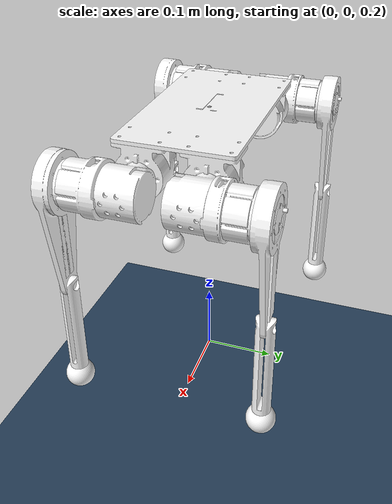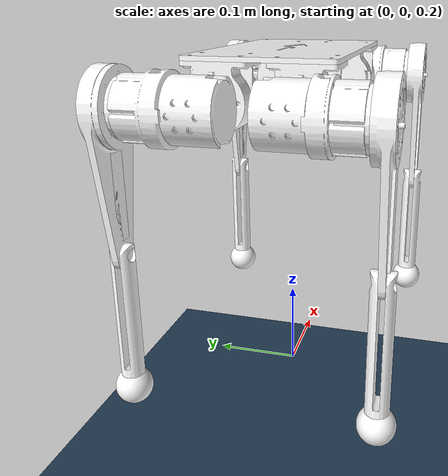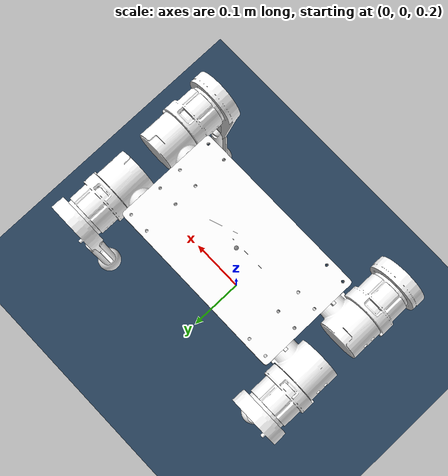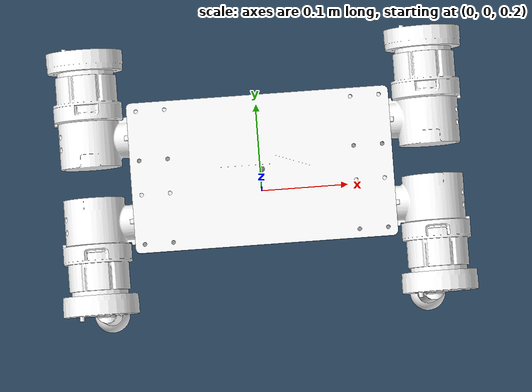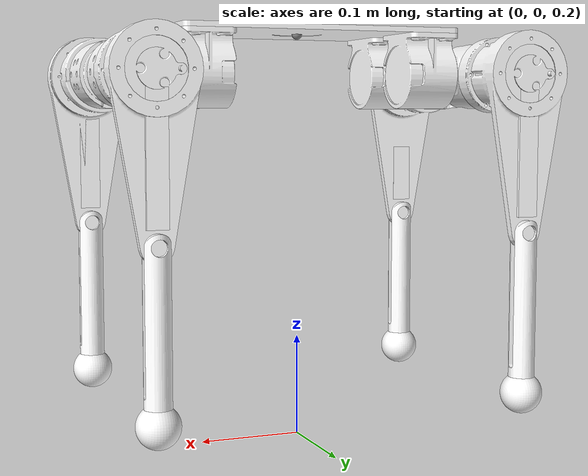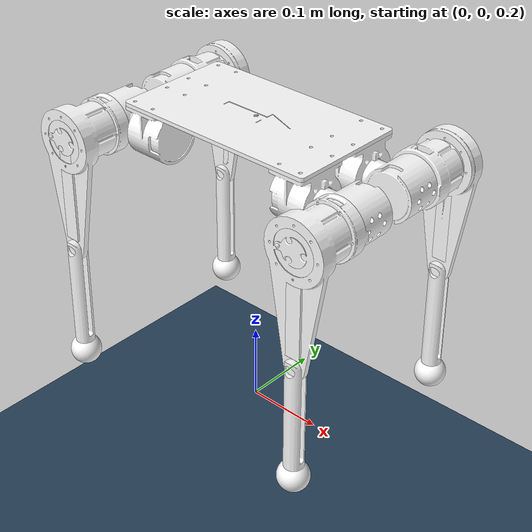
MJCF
<mujoco model="dog scene">
  <include file="dog_V1.xml" />

  <statistic center="0 0 0.1" extent="0.8"/>

  <visual>
    <headlight diffuse="0.6 0.6 0.6" ambient="0.3 0.3 0.3" specular="0 0 0"/>
    <rgba haze="0.15 0.25 0.35 1"/>
    <global azimuth="-130" elevation="-20"/>
  </visual>

  <asset>
    <texture type="skybox" builtin="gradient" rgb1="0.3 0.5 0.7" rgb2="0 0 0" width="512" height="3072"/>
    <texture type="2d" name="groundplane" builtin="checker" mark="edge" rgb1="0.2 0.3 0.4" rgb2="0.1 0.2 0.3"
      markrgb="0.8 0.8 0.8" width="300" height="300"/>
    <material name="groundplane" texture="groundplane" texuniform="true" texrepeat="5 5" reflectance="0.2"/>
  </asset>

  <worldbody>
    <light pos="0 0 1.5" dir="0 0 -1" directional="true"/>
    <geom name="floor" size="0 0 0.05" type="plane" material="groundplane"/>

  </worldbody>
</mujoco>

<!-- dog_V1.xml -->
<mujoco model="dog">
  <compiler angle="radian" meshdir="../meshes/"/>

  <asset>
    <mesh name="base_link" file="base_link.STL"/>
    <mesh name="Link_ZQ1" file="Link_ZQ1.STL"/>
    <mesh name="Link_ZQ2" file="Link_ZQ2.STL"/>
    <mesh name="Link_ZQ3" file="Link_ZQ3.STL"/>
    <mesh name="Link_ZQ4" file="Link_ZQ4.STL"/>
    <mesh name="Link_ZQ5" file="Link_ZQ5.STL"/>
    <mesh name="Link_ZH1" file="Link_ZH1.STL"/>
    <mesh name="Link_ZH2" file="Link_ZH2.STL"/>
    <mesh name="Link_ZH3" file="Link_ZH3.STL"/>
    <mesh name="Link_ZH4" file="Link_ZH4.STL"/>
    <mesh name="Link_ZH5" file="Link_ZH5.STL"/>
    <mesh name="Link_YH1" file="Link_YH1.STL"/>
    <mesh name="Link_YH2" file="Link_YH2.STL"/>
    <mesh name="Link_YH3" file="Link_YH3.STL"/>
    <mesh name="Link_YH4" file="Link_YH4.STL"/>
    <mesh name="Link_YH5" file="Link_YH5.STL"/>
    <mesh name="Link_YQ1" file="Link_YQ1.STL"/>
    <mesh name="Link_YQ2" file="Link_YQ2.STL"/>
    <mesh name="Link_YQ3" file="Link_YQ3.STL"/>
    <mesh name="Link_YQ4" file="Link_YQ4.STL"/>
    <mesh name="Link_YQ5" file="Link_YQ5.STL"/>
  </asset>

  <!-- d.qpos index ZQ ZH YH YQ-->
  <worldbody>
    <body name="base_link" pos="0 0 0.6">
      <geom type="mesh" contype="0" conaffinity="0" group="1" density="0" rgba="1 1 1 1" mesh="base_link"/>
      <geom type="mesh" rgba="1 1 1 1" mesh="base_link"/>
      <joint name="floating_base_joint" type="free" limited="false" actuatorfrclimited="false"/>
      <geom pos="0.113 0.044 0" type="mesh" contype="0" conaffinity="0" group="1" density="0" rgba="1 1 1 1" mesh="Link_ZQ1"/>
      <geom pos="0.113 0.044 0" type="mesh" rgba="1 1 1 1" mesh="Link_ZQ1"/>
      <geom pos="-0.113 0.044 0" type="mesh" contype="0" conaffinity="0" group="1" density="0" rgba="1 1 1 1" mesh="Link_ZH1"/>
      <geom pos="-0.113 0.044 0" type="mesh" rgba="1 1 1 1" mesh="Link_ZH1"/>
      <geom pos="-0.113 -0.044 0" quat="6.68662e-08 0 0 -1" type="mesh" contype="0" conaffinity="0" group="1" density="0" rgba="1 1 1 1" mesh="Link_YH1"/>
      <geom pos="-0.113 -0.044 0" quat="6.68662e-08 0 0 -1" type="mesh" rgba="1 1 1 1" mesh="Link_YH1"/>
      <geom pos="0.113 -0.044 0" type="mesh" contype="0" conaffinity="0" group="1" density="0" rgba="1 1 1 1" mesh="Link_YQ1"/>
      <geom pos="0.113 -0.044 0" type="mesh" rgba="1 1 1 1" mesh="Link_YQ1"/>
      <site name="imu" pos="-0.0 0 0." />
      <body name="Link_ZQ2" pos="0.113 0.044 -0.04">
        <inertial pos="0.0653815 -0.00367484 3.74856e-08" quat="0.500863 0.500854 0.499135 0.499145" mass="0.158887" diaginertia="9.05634e-05 7.88558e-05 6.94079e-05"/>
        <joint name="joint_ZQ2" pos="0 0 0" axis="1 0 0" range="-1.04 1.04"/>
        <geom type="mesh" contype="0" conaffinity="0" group="1" density="0" rgba="1 1 1 1" mesh="Link_ZQ2"/>
        <geom type="mesh" rgba="1 1 1 1" mesh="Link_ZQ2"/>
        <body name="Link_ZQ3" pos="0.067 0 0">
          <inertial pos="-9.66843e-05 0.063763 -0.0125912" quat="0.707376 1.01076e-05 -1.01153e-05 0.706838" mass="0.328525" diaginertia="0.000433051 0.000357997 0.000133948"/>
          <joint name="joint_ZQ3" pos="0 0 0" axis="0 1 0" range="-2.6 2.6"/>
          <geom type="mesh" contype="0" conaffinity="0" group="1" density="0" rgba="1 1 1 1" mesh="Link_ZQ3"/>
          <geom size="0.03 0.025" pos="0 0.07 0" quat="0.707388 0.706825 0 0" type="cylinder" rgba="1 1 1 1"/>
          <geom size="0.01 0.005 0.06" pos="0 0.09 -0.075" type="box" rgba="1 1 1 1"/>
          <body name="Link_ZQ4" pos="0 0.0885 -0.15">
            <inertial pos="-1.46154e-08 3.41698e-07 -0.105906" quat="1 0 0 -9.95816e-05" mass="0.0802946" diaginertia="0.000230871 0.000229843 9.65894e-06"/>
            <joint name="joint_ZQ4" pos="0 0 0" axis="0 1 0" range="-2.5 -0.6"/>
            <geom type="mesh" contype="0" conaffinity="0" group="1" density="0" rgba="1 1 1 1" mesh="Link_ZQ4"/>
            <geom type="mesh" rgba="1 1 1 1" mesh="Link_ZQ4"/>
            <geom pos="0 0 -0.155" quat="1 0 0 0" type="mesh" contype="0" conaffinity="0" group="1" density="0" rgba="1 1 1 1" mesh="Link_ZQ5"/>
            <geom pos="0 0 -0.155" quat="1 0 0 0" type="mesh" rgba="1 1 1 1" mesh="Link_ZQ5"/>
          </body>
        </body>
      </body>
      <body name="Link_ZH2" pos="-0.113 0.044 -0.04">
        <inertial pos="-0.0653815 -0.00367485 -3.67134e-08" quat="0.499145 0.499135 0.500854 0.500863" mass="0.158887" diaginertia="9.05634e-05 7.88558e-05 6.94079e-05"/>
        <joint name="joint_ZH2" pos="0 0 0" axis="1 0 0" range="-1.04 1.04"/>
        <geom type="mesh" contype="0" conaffinity="0" group="1" density="0" rgba="1 1 1 1" mesh="Link_ZH2"/>
        <geom type="mesh" rgba="1 1 1 1" mesh="Link_ZH2"/>
        <body name="Link_ZH3" pos="-0.067 0 0">
          <inertial pos="-0.000124472 0.063763 -0.0125913" quat="0.707154 1.00359e-05 -1.00372e-05 0.707059" mass="0.328525" diaginertia="0.000433051 0.000357997 0.000133948"/>
          <joint name="joint_ZH3" pos="0 0 0" axis="0 1 0" range="-2.6 2.6"/>
          <geom type="mesh" contype="0" conaffinity="0" group="1" density="0" rgba="1 1 1 1" mesh="Link_ZH3"/>
          <geom size="0.03 0.025" pos="0 0.07 0" quat="0.707388 0.706825 0 0" type="cylinder" rgba="1 1 1 1"/>
          <geom size="0.01 0.005 0.06" pos="0 0.09 -0.075" type="box" rgba="1 1 1 1"/>
          <body name="Link_ZH4" pos="0 0.0885 -0.15">
            <inertial pos="-1.46154e-08 3.41698e-07 -0.105906" quat="1 0 0 -9.95816e-05" mass="0.0802946" diaginertia="0.000230871 0.000229843 9.65894e-06"/>
            <joint name="joint_ZH4" pos="0 0 0" axis="0 1 0" range="-2.5 -0.6"/>
            <geom type="mesh" contype="0" conaffinity="0" group="1" density="0" rgba="1 1 1 1" mesh="Link_ZH4"/>
            <geom type="mesh" rgba="1 1 1 1" mesh="Link_ZH4"/>
            <geom pos="0 0 -0.155" quat="1 0 0 0" type="mesh" contype="0" conaffinity="0" group="1" density="0" rgba="1 1 1 1" mesh="Link_ZH5"/>
            <geom pos="0 0 -0.155" quat="1 0 0 0" type="mesh" rgba="1 1 1 1" mesh="Link_ZH5"/>
          </body>
        </body>
      </body>
      <body name="Link_YH2" pos="-0.113 -0.044 -0.04" quat="4.72816e-08 0.707107 4.72816e-08 -0.707107">
        <inertial pos="-3.67135e-08 -0.00367484 0.0653815" quat="0.707106 0.00120872 -0.00122161 0.707106" mass="0.158887" diaginertia="9.05634e-05 7.88558e-05 6.94079e-05"/>
        <joint name="joint_YH2" pos="0 0 0" axis="0 0 -1" range="-1.04 1.04"/>
        <geom type="mesh" contype="0" conaffinity="0" group="1" density="0" rgba="1 1 1 1" mesh="Link_YH2"/>
        <geom type="mesh" rgba="1 1 1 1" mesh="Link_YH2"/>
        <body name="Link_YH3" pos="0 0 0.067" quat="0.5 -0.5 -0.5 -0.5">
          <inertial pos="0.000123999 0.0125923 0.0637628" quat="0.499972 0.49996 -0.500028 0.50004" mass="0.328527" diaginertia="0.000433079 0.000358025 0.000133948"/>
          <joint name="joint_YH3" pos="0 0 0" axis="0 0 -1" range="-2.6 2.6"/>
          <geom type="mesh" contype="0" conaffinity="0" group="1" density="0" rgba="1 1 1 1" mesh="Link_YH3"/>
          <geom size="0.03 0.025" pos="0 0 0.07" type="cylinder" rgba="1 1 1 1"/>
          <geom size="0.01 0.005 0.06" pos="0 0.075 0.09" quat="0.707388 0.706825 0 0" type="box" rgba="1 1 1 1"/>
          <body name="Link_YH4" pos="0 0.15 0.0885" quat="0 0 -0.707107 0.707107">
            <inertial pos="-1.46154e-08 3.41698e-07 -0.105906" quat="1 0 0 -9.95816e-05" mass="0.0802946" diaginertia="0.000230871 0.000229843 9.65894e-06"/>
            <joint name="joint_YH4" pos="0 0 0" axis="0 1 0" range="-2.5 -0.6"/>
            <geom type="mesh" contype="0" conaffinity="0" group="1" density="0" rgba="1 1 1 1" mesh="Link_YH4"/>
            <geom type="mesh" rgba="1 1 1 1" mesh="Link_YH4"/>
            <geom pos="0 0 -0.155" quat="1 0 0 0" type="mesh" contype="0" conaffinity="0" group="1" density="0" rgba="1 1 1 1" mesh="Link_YH5"/>
            <geom pos="0 0 -0.155" quat="1 0 0 0" type="mesh" rgba="1 1 1 1" mesh="Link_YH5"/>
          </body>
        </body>
      </body>
      <body name="Link_YQ2" pos="0.113 -0.044 -0.04">
        <inertial pos="0.0653815 0.00367485 -3.67134e-08" quat="0.499135 0.499145 0.500863 0.500854" mass="0.158887" diaginertia="9.05634e-05 7.88558e-05 6.94079e-05"/>
        <joint name="joint_YQ2" pos="0 0 0" axis="1 0 0" range="-1.04 1.04"/>
        <geom type="mesh" contype="0" conaffinity="0" group="1" density="0" rgba="1 1 1 1" mesh="Link_YQ2"/>
        <geom type="mesh" rgba="1 1 1 1" mesh="Link_YQ2"/>
        <body name="Link_YQ3" pos="0.067 0 0">
          <inertial pos="-9.59681e-05 -0.0637628 -0.0125923" quat="0.706837 8.38727e-06 -8.38088e-06 0.707376" mass="0.328527" diaginertia="0.00043308 0.000358025 0.000133948"/>
          <joint name="joint_YQ3" pos="0 0 0" axis="0 1 0" range="-2.6 2.6"/>
          <geom type="mesh" contype="0" conaffinity="0" group="1" density="0" rgba="1 1 1 1" mesh="Link_YQ3"/>
          <geom size="0.03 0.025" pos="0 -0.07 0" quat="0.707388 0.706825 0 0" type="cylinder" rgba="1 1 1 1"/>
          <geom size="0.01 0.005 0.06" pos="0 -0.09 -0.075" type="box" rgba="1 1 1 1"/>
          <body name="Link_YQ4" pos="0 -0.0885 -0.15">
            <inertial pos="-1.46154e-08 3.41698e-07 -0.105906" quat="1 0 0 -9.95816e-05" mass="0.0802946" diaginertia="0.000230871 0.000229843 9.65894e-06"/>
            <joint name="joint_YQ4" pos="0 0 0" axis="0 1 0" range="-2.5 -0.6"/>
            <geom type="mesh" contype="0" conaffinity="0" group="1" density="0" rgba="1 1 1 1" mesh="Link_YQ4"/>
            <geom type="mesh" rgba="1 1 1 1" mesh="Link_YQ4"/>
            <geom pos="0 0 -0.155" quat="1 0 0 0" type="mesh" contype="0" conaffinity="0" group="1" density="0" rgba="1 1 1 1" mesh="Link_YQ5"/>
            <geom pos="0 0 -0.155" quat="1 0 0 0" type="mesh" rgba="1 1 1 1" mesh="Link_YQ5"/>
          </body>
        </body>
      </body>
    </body>
  </worldbody>

  <!-- d.ctrl index -->
  <actuator>
    <position joint="joint_ZQ2" kp="5.0" kv="0.1" ctrlrange="-1.04 1.04"/>
    <position joint="joint_YQ2" kp="5.0" kv="0.1" ctrlrange="-1.04 1.04"/>
    <position joint="joint_ZH2" kp="5.0" kv="0.1" ctrlrange="-1.04 1.04"/>
    <position joint="joint_YH2" kp="5.0" kv="0.1" ctrlrange="-1.04 1.04"/>
    <position joint="joint_ZQ3" kp="5.0" kv="0.1" ctrlrange="-2.6 2.6"/>
    <position joint="joint_YQ3" kp="5.0" kv="0.1" ctrlrange="-2.6 2.6"/>
    <position joint="joint_ZH3" kp="5.0" kv="0.1" ctrlrange="-2.6 2.6"/>
    <position joint="joint_YH3" kp="5.0" kv="0.1" ctrlrange="-2.6 2.6"/>
    <position joint="joint_ZQ4" kp="5.0" kv="0.1" ctrlrange="-2.5 -0.6"/>
    <position joint="joint_YQ4" kp="5.0" kv="0.1" ctrlrange="-2.5 -0.6"/>
    <position joint="joint_ZH4" kp="5.0" kv="0.1" ctrlrange="-2.5 -0.6"/>
    <position joint="joint_YH4" kp="5.0" kv="0.1" ctrlrange="-2.5 -0.6"/>
  </actuator>

  <sensor>
    <jointpos name="FR_hip_pos" joint="joint_YQ2" />
    <jointpos name="FR_thigh_pos" joint="joint_YQ3" />
    <jointpos name="FR_calf_pos" joint="joint_YQ4" />
    <jointpos name="FL_hip_pos" joint="joint_ZQ2" />
    <jointpos name="FL_thigh_pos" joint="joint_ZQ3" />
    <jointpos name="FL_calf_pos" joint="joint_ZQ4" />
    <jointpos name="RR_hip_pos" joint="joint_YH2" />
    <jointpos name="RR_thigh_pos" joint="joint_YH3" />
    <jointpos name="RR_calf_pos" joint="joint_YH4" />
    <jointpos name="RL_hip_pos" joint="joint_ZH2" />
    <jointpos name="RL_thigh_pos" joint="joint_ZH3" />
    <jointpos name="RL_calf_pos" joint="joint_ZH4" />

    <jointvel name="FR_hip_vel" joint="joint_YQ2" />
    <jointvel name="FR_thigh_vel" joint="joint_YQ3" />
    <jointvel name="FR_calf_vel" joint="joint_YQ4" />
    <jointvel name="FL_hip_vel" joint="joint_ZQ2" />
    <jointvel name="FL_thigh_vel" joint="joint_ZQ3" />
    <jointvel name="FL_calf_vel" joint="joint_ZQ4" />
    <jointvel name="RR_hip_vel" joint="joint_YH2" />
    <jointvel name="RR_thigh_vel" joint="joint_YH3" />
    <jointvel name="RR_calf_vel" joint="joint_YH4" />
    <jointvel name="RL_hip_vel" joint="joint_ZH2" />
    <jointvel name="RL_thigh_vel" joint="joint_ZH3" />
    <jointvel name="RL_calf_vel" joint="joint_ZH4" />

    <jointactuatorfrc name="FR_hip_torque" joint="joint_YQ2" noise="0.01" />
    <jointactuatorfrc name="FR_thigh_torque" joint="joint_YQ3" noise="0.01" />
    <jointactuatorfrc name="FR_calf_torque" joint="joint_YQ4" noise="0.01" />
    <jointactuatorfrc name="FL_hip_torque" joint="joint_ZQ2" noise="0.01" />
    <jointactuatorfrc name="FL_thigh_torque" joint="joint_ZQ3" noise="0.01" />
    <jointactuatorfrc name="FL_calf_torque" joint="joint_ZQ4" noise="0.01" />
    <jointactuatorfrc name="RR_hip_torque" joint="joint_YH2" noise="0.01" />
    <jointactuatorfrc name="RR_thigh_torque" joint="joint_YH3" noise="0.01" />
    <jointactuatorfrc name="RR_calf_torque" joint="joint_YH4" noise="0.01" />
    <jointactuatorfrc name="RL_hip_torque" joint="joint_ZH2" noise="0.01" />
    <jointactuatorfrc name="RL_thigh_torque" joint="joint_ZH3" noise="0.01" />
    <jointactuatorfrc name="RL_calf_torque" joint="joint_ZH4" noise="0.01" />

    <framequat name="imu_quat" objtype="site" objname="imu" />
    <gyro name="imu_gyro" site="imu" />
    <accelerometer name="imu_acc" site="imu" />

    <framepos name="frame_pos" objtype="site" objname="imu" />
    <framelinvel name="frame_vel" objtype="site" objname="imu" />
  </sensor>

</mujoco>
